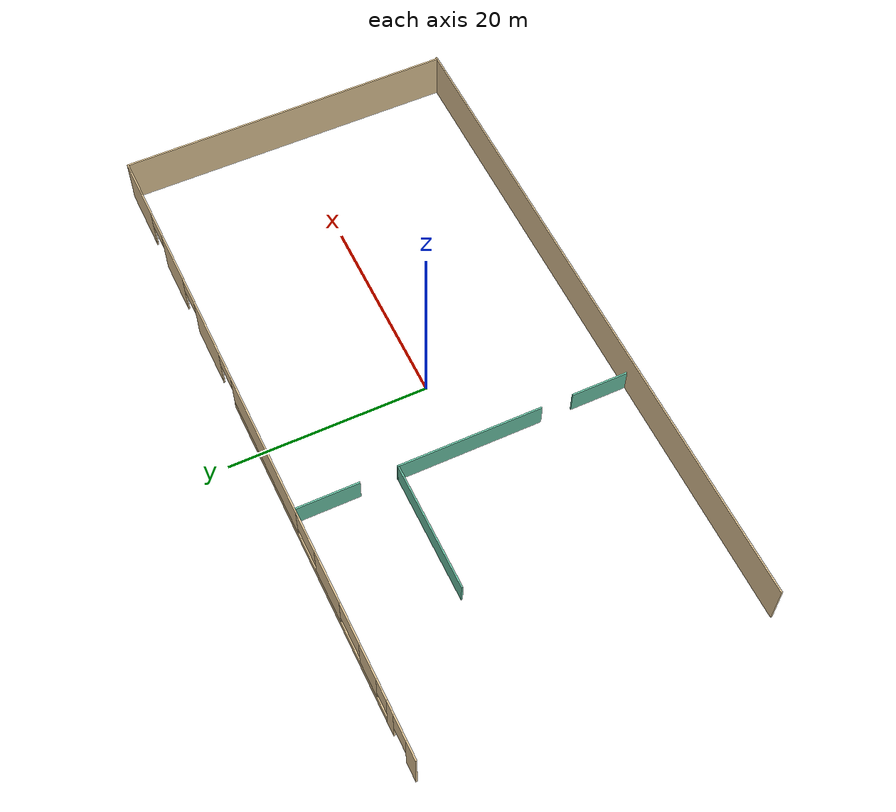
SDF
<sdf version="1.6">
 <model name="myWarehouse">
  <link name="Wall_0">
   <pose>-0.070182 16.8917 0 0 -0 0.003828</pose>
   <visual name="Wall_0_Visual_0">
    <pose>-32.8034 0 2.5 0 -0 0</pose>
    <geometry><box><size>1.86164 0.15 5</size></box></geometry>
    <material>
     <script><uri>file://media/materials/scripts/gazebo.material</uri><name>Gazebo/Grey</name></script>
     <ambient>0.921569 0.807843 0.615686 1</ambient>
     <shader type="pixel"/>
     <diffuse>0.7 0.7 0.7 1</diffuse>
     <specular>0.01 0.01 0.01 1</specular>
     <emissive>0 0 0 1</emissive>
    </material>
    <meta><layer>0</layer></meta>
   </visual>
   <visual name="Wall_0_Visual_1">
    <pose>-28.8213 0 2.5 0 -0 0</pose>
    <geometry><box><size>1.30258 0.15 5</size></box></geometry>
    <material>
     <script><uri>file://media/materials/scripts/gazebo.material</uri><name>Gazebo/Grey</name></script>
     <ambient>0.921569 0.807843 0.615686 1</ambient>
     <shader type="pixel"/>
     <diffuse>0.7 0.7 0.7 1</diffuse>
     <specular>0.01 0.01 0.01 1</specular>
     <emissive>0 0 0 1</emissive>
    </material>
    <meta><layer>0</layer></meta>
   </visual>
   <visual name="Wall_0_Visual_2">
    <pose>12.0192 0 2.5 0 -0 0</pose>
    <geometry><box><size>6.37575 0.15 5</size></box></geometry>
    <material>
     <script><uri>file://media/materials/scripts/gazebo.material</uri><name>Gazebo/Grey</name></script>
     <ambient>0.921569 0.807843 0.615686 1</ambient>
     <shader type="pixel"/>
     <diffuse>0.7 0.7 0.7 1</diffuse>
     <specular>0.01 0.01 0.01 1</specular>
     <emissive>0 0 0 1</emissive>
    </material>
    <meta><layer>0</layer></meta>
   </visual>
   <visual name="Wall_0_Visual_3">
    <pose>21.0664 0 2.5 0 -0 0</pose>
    <geometry><box><size>5.71874 0.15 5</size></box></geometry>
    <material>
     <script><uri>file://media/materials/scripts/gazebo.material</uri><name>Gazebo/Grey</name></script>
     <ambient>0.921569 0.807843 0.615686 1</ambient>
     <shader type="pixel"/>
     <diffuse>0.7 0.7 0.7 1</diffuse>
     <specular>0.01 0.01 0.01 1</specular>
     <emissive>0 0 0 1</emissive>
    </material>
    <meta><layer>0</layer></meta>
   </visual>
   <visual name="Wall_0_Visual_4">
    <pose>30.33 0 2.5 0 -0 0</pose>
    <geometry><box><size>6.80845 0.15 5</size></box></geometry>
    <material>
     <script><uri>file://media/materials/scripts/gazebo.material</uri><name>Gazebo/Grey</name></script>
     <ambient>0.921569 0.807843 0.615686 1</ambient>
     <shader type="pixel"/>
     <diffuse>0.7 0.7 0.7 1</diffuse>
     <specular>0.01 0.01 0.01 1</specular>
     <emissive>0 0 0 1</emissive>
    </material>
    <meta><layer>0</layer></meta>
   </visual>
   <visual name="Wall_0_Visual_5">
    <pose>-11.1694 0 0.5 0 -0 0</pose>
    <geometry><box><size>34.0013 0.15 1</size></box></geometry>
    <material>
     <script><uri>file://media/materials/scripts/gazebo.material</uri><name>Gazebo/Grey</name></script>
     <ambient>0.921569 0.807843 0.615686 1</ambient>
     <shader type="pixel"/>
     <diffuse>0.7 0.7 0.7 1</diffuse>
     <specular>0.01 0.01 0.01 1</specular>
     <emissive>0 0 0 1</emissive>
    </material>
    <meta><layer>0</layer></meta>
   </visual>
   <visual name="Wall_0_Visual_6">
    <pose>-24.4411 0 3 0 -0 0</pose>
    <geometry><box><size>3.45788 0.15 4</size></box></geometry>
    <material>
     <script><uri>file://media/materials/scripts/gazebo.material</uri><name>Gazebo/Grey</name></script>
     <ambient>0.921569 0.807843 0.615686 1</ambient>
     <shader type="pixel"/>
     <diffuse>0.7 0.7 0.7 1</diffuse>
     <specular>0.01 0.01 0.01 1</specular>
     <emissive>0 0 0 1</emissive>
    </material>
    <meta><layer>0</layer></meta>
   </visual>
   <visual name="Wall_0_Visual_7">
    <pose>-16.0599 0 3 0 -0 0</pose>
    <geometry><box><size>5.30456 0.15 4</size></box></geometry>
    <material>
     <script><uri>file://media/materials/scripts/gazebo.material</uri><name>Gazebo/Grey</name></script>
     <ambient>0.921569 0.807843 0.615686 1</ambient>
     <shader type="pixel"/>
     <diffuse>0.7 0.7 0.7 1</diffuse>
     <specular>0.01 0.01 0.01 1</specular>
     <emissive>0 0 0 1</emissive>
    </material>
    <meta><layer>0</layer></meta>
   </visual>
   <visual name="Wall_0_Visual_8">
    <pose>-1.78814 0 3 0 -0 0</pose>
    <geometry><box><size>15.2389 0.15 4</size></box></geometry>
    <material>
     <script><uri>file://media/materials/scripts/gazebo.material</uri><name>Gazebo/Grey</name></script>
     <ambient>0.921569 0.807843 0.615686 1</ambient>
     <shader type="pixel"/>
     <diffuse>0.7 0.7 0.7 1</diffuse>
     <specular>0.01 0.01 0.01 1</specular>
     <emissive>0 0 0 1</emissive>
    </material>
    <meta><layer>0</layer></meta>
   </visual>
   <visual name="Wall_0_Visual_9">
    <pose>-30.6726 0 3.5 0 -0 0</pose>
    <geometry><box><size>2.4 0.15 3</size></box></geometry>
    <material>
     <script><uri>file://media/materials/scripts/gazebo.material</uri><name>Gazebo/Grey</name></script>
     <ambient>0.921569 0.807843 0.615686 1</ambient>
     <shader type="pixel"/>
     <diffuse>0.7 0.7 0.7 1</diffuse>
     <specular>0.01 0.01 0.01 1</specular>
     <emissive>0 0 0 1</emissive>
    </material>
    <meta><layer>0</layer></meta>
   </visual>
   <visual name="Wall_0_Visual_10">
    <pose>-27.17 0 3.5 0 -0 0</pose>
    <geometry><box><size>2 0.15 3</size></box></geometry>
    <material>
     <script><uri>file://media/materials/scripts/gazebo.material</uri><name>Gazebo/Grey</name></script>
     <ambient>0.921569 0.807843 0.615686 1</ambient>
     <shader type="pixel"/>
     <diffuse>0.7 0.7 0.7 1</diffuse>
     <specular>0.01 0.01 0.01 1</specular>
     <emissive>0 0 0 1</emissive>
    </material>
    <meta><layer>0</layer></meta>
   </visual>
   <visual name="Wall_0_Visual_11">
    <pose>-20.7121 0 3.5 0 -0 0</pose>
    <geometry><box><size>4 0.15 3</size></box></geometry>
    <material>
     <script><uri>file://media/materials/scripts/gazebo.material</uri><name>Gazebo/Grey</name></script>
     <ambient>0.921569 0.807843 0.615686 1</ambient>
     <shader type="pixel"/>
     <diffuse>0.7 0.7 0.7 1</diffuse>
     <specular>0.01 0.01 0.01 1</specular>
     <emissive>0 0 0 1</emissive>
    </material>
    <meta><layer>0</layer></meta>
   </visual>
   <visual name="Wall_0_Visual_12">
    <pose>-11.4076 0 3.5 0 -0 0</pose>
    <geometry><box><size>4 0.15 3</size></box></geometry>
    <material>
     <script><uri>file://media/materials/scripts/gazebo.material</uri><name>Gazebo/Grey</name></script>
     <ambient>0.921569 0.807843 0.615686 1</ambient>
     <shader type="pixel"/>
     <diffuse>0.7 0.7 0.7 1</diffuse>
     <specular>0.01 0.01 0.01 1</specular>
     <emissive>0 0 0 1</emissive>
    </material>
    <meta><layer>0</layer></meta>
   </visual>
   <visual name="Wall_0_Visual_13">
    <pose>16.707 0 4 0 -0 0</pose>
    <geometry><box><size>3 0.15 2</size></box></geometry>
    <material>
     <script><uri>file://media/materials/scripts/gazebo.material</uri><name>Gazebo/Grey</name></script>
     <ambient>0.921569 0.807843 0.615686 1</ambient>
     <shader type="pixel"/>
     <diffuse>0.7 0.7 0.7 1</diffuse>
     <specular>0.01 0.01 0.01 1</specular>
     <emissive>0 0 0 1</emissive>
    </material>
    <meta><layer>0</layer></meta>
   </visual>
   <visual name="Wall_0_Visual_14">
    <pose>25.4258 0 4 0 -0 0</pose>
    <geometry><box><size>3 0.15 2</size></box></geometry>
    <material>
     <script><uri>file://media/materials/scripts/gazebo.material</uri><name>Gazebo/Grey</name></script>
     <ambient>0.921569 0.807843 0.615686 1</ambient>
     <shader type="pixel"/>
     <diffuse>0.7 0.7 0.7 1</diffuse>
     <specular>0.01 0.01 0.01 1</specular>
     <emissive>0 0 0 1</emissive>
    </material>
    <meta><layer>0</layer></meta>
   </visual>
   <visual name="Wall_0_Visual_15">
    <pose>7.33129 0 4 0 -0 0</pose>
    <geometry><box><size>3 0.15 2</size></box></geometry>
    <material>
     <script><uri>file://media/materials/scripts/gazebo.material</uri><name>Gazebo/Grey</name></script>
     <ambient>0.921569 0.807843 0.615686 1</ambient>
     <shader type="pixel"/>
     <diffuse>0.7 0.7 0.7 1</diffuse>
     <specular>0.01 0.01 0.01 1</specular>
     <emissive>0 0 0 1</emissive>
    </material>
    <meta><layer>0</layer></meta>
   </visual>
   <collision name="Wall_0_Collision_0">
    <pose>-32.8034 0 2.5 0 -0 0</pose>
    <geometry><box><size>1.86164 0.15 5</size></box></geometry>
    <surface>
     <friction>
      <ode><mu>1</mu><mu2>1</mu2><fdir1>0 0 0</fdir1><slip1>0</slip1><slip2>0</slip2></ode>
      <torsional>
       <coefficient>1</coefficient>
       <patch_radius>0</patch_radius>
       <surface_radius>0</surface_radius>
       <use_patch_radius>1</use_patch_radius>
       <ode><slip>0</slip></ode>
      </torsional>
     </friction>
     <bounce><restitution_coefficient>0</restitution_coefficient><threshold>1e+06</threshold></bounce>
     <contact>
      <collide_without_contact>0</collide_without_contact>
      <collide_without_contact_bitmask>1</collide_without_contact_bitmask>
      <collide_bitmask>1</collide_bitmask>
      <ode>
       <soft_cfm>0</soft_cfm>
       <soft_erp>0.2</soft_erp>
       <kp>1e+13</kp>
       <kd>1</kd>
       <max_vel>0.01</max_vel>
       <min_depth>0</min_depth>
      </ode>
      <bullet>
       <split_impulse>1</split_impulse>
       <split_impulse_penetration_threshold>-0.01</split_impulse_penetration_threshold>
       <soft_cfm>0</soft_cfm>
       <soft_erp>0.2</soft_erp>
       <kp>1e+13</kp>
       <kd>1</kd>
      </bullet>
     </contact>
    </surface>
   </collision>
   <collision name="Wall_0_Collision_1">
    <pose>-28.8213 0 2.5 0 -0 0</pose>
    <geometry><box><size>1.30258 0.15 5</size></box></geometry>
    <surface>
     <friction>
      <ode><mu>1</mu><mu2>1</mu2><fdir1>0 0 0</fdir1><slip1>0</slip1><slip2>0</slip2></ode>
      <torsional>
       <coefficient>1</coefficient>
       <patch_radius>0</patch_radius>
       <surface_radius>0</surface_radius>
       <use_patch_radius>1</use_patch_radius>
       <ode><slip>0</slip></ode>
      </torsional>
     </friction>
     <bounce><restitution_coefficient>0</restitution_coefficient><threshold>1e+06</threshold></bounce>
     <contact>
      <collide_without_contact>0</collide_without_contact>
      <collide_without_contact_bitmask>1</collide_without_contact_bitmask>
      <collide_bitmask>1</collide_bitmask>
      <ode>
       <soft_cfm>0</soft_cfm>
       <soft_erp>0.2</soft_erp>
       <kp>1e+13</kp>
       <kd>1</kd>
       <max_vel>0.01</max_vel>
       <min_depth>0</min_depth>
      </ode>
      <bullet>
       <split_impulse>1</split_impulse>
       <split_impulse_penetration_threshold>-0.01</split_impulse_penetration_threshold>
       <soft_cfm>0</soft_cfm>
       <soft_erp>0.2</soft_erp>
       <kp>1e+13</kp>
       <kd>1</kd>
      </bullet>
     </contact>
    </surface>
   </collision>
   <collision name="Wall_0_Collision_2">
    <pose>12.0192 0 2.5 0 -0 0</pose>
    <geometry><box><size>6.37575 0.15 5</size></box></geometry>
    <surface>
     <friction>
      <ode><mu>1</mu><mu2>1</mu2><fdir1>0 0 0</fdir1><slip1>0</slip1><slip2>0</slip2></ode>
      <torsional>
       <coefficient>1</coefficient>
       <patch_radius>0</patch_radius>
       <surface_radius>0</surface_radius>
       <use_patch_radius>1</use_patch_radius>
       <ode><slip>0</slip></ode>
      </torsional>
     </friction>
     <bounce><restitution_coefficient>0</restitution_coefficient><threshold>1e+06</threshold></bounce>
     <contact>
      <collide_without_contact>0</collide_without_contact>
      <collide_without_contact_bitmask>1</collide_without_contact_bitmask>
      <collide_bitmask>1</collide_bitmask>
      <ode>
       <soft_cfm>0</soft_cfm>
       <soft_erp>0.2</soft_erp>
       <kp>1e+13</kp>
       <kd>1</kd>
       <max_vel>0.01</max_vel>
       <min_depth>0</min_depth>
      </ode>
      <bullet>
       <split_impulse>1</split_impulse>
       <split_impulse_penetration_threshold>-0.01</split_impulse_penetration_threshold>
       <soft_cfm>0</soft_cfm>
       <soft_erp>0.2</soft_erp>
       <kp>1e+13</kp>
       <kd>1</kd>
      </bullet>
     </contact>
    </surface>
   </collision>
   <collision name="Wall_0_Collision_3">
    <pose>21.0664 0 2.5 0 -0 0</pose>
    <geometry><box><size>5.71874 0.15 5</size></box></geometry>
    <surface>
     <friction>
      <ode><mu>1</mu><mu2>1</mu2><fdir1>0 0 0</fdir1><slip1>0</slip1><slip2>0</slip2></ode>
      <torsional>
       <coefficient>1</coefficient>
       <patch_radius>0</patch_radius>
       <surface_radius>0</surface_radius>
       <use_patch_radius>1</use_patch_radius>
       <ode><slip>0</slip></ode>
      </torsional>
     </friction>
     <bounce><restitution_coefficient>0</restitution_coefficient><threshold>1e+06</threshold></bounce>
     <contact>
      <collide_without_contact>0</collide_without_contact>
      <collide_without_contact_bitmask>1</collide_without_contact_bitmask>
      <collide_bitmask>1</collide_bitmask>
      <ode>
       <soft_cfm>0</soft_cfm>
       <soft_erp>0.2</soft_erp>
       <kp>1e+13</kp>
       <kd>1</kd>
       <max_vel>0.01</max_vel>
       <min_depth>0</min_depth>
      </ode>
      <bullet>
       <split_impulse>1</split_impulse>
       <split_impulse_penetration_threshold>-0.01</split_impulse_penetration_threshold>
       <soft_cfm>0</soft_cfm>
       <soft_erp>0.2</soft_erp>
       <kp>1e+13</kp>
       <kd>1</kd>
      </bullet>
     </contact>
    </surface>
   </collision>
   <collision name="Wall_0_Collision_4">
    <pose>30.33 0 2.5 0 -0 0</pose>
    <geometry><box><size>6.80845 0.15 5</size></box></geometry>
    <surface>
     <friction>
      <ode><mu>1</mu><mu2>1</mu2><fdir1>0 0 0</fdir1><slip1>0</slip1><slip2>0</slip2></ode>
      <torsional>
       <coefficient>1</coefficient>
       <patch_radius>0</patch_radius>
       <surface_radius>0</surface_radius>
       <use_patch_radius>1</use_patch_radius>
       <ode><slip>0</slip></ode>
      </torsional>
     </friction>
     <bounce><restitution_coefficient>0</restitution_coefficient><threshold>1e+06</threshold></bounce>
     <contact>
      <collide_without_contact>0</collide_without_contact>
      <collide_without_contact_bitmask>1</collide_without_contact_bitmask>
      <collide_bitmask>1</collide_bitmask>
      <ode>
       <soft_cfm>0</soft_cfm>
       <soft_erp>0.2</soft_erp>
       <kp>1e+13</kp>
       <kd>1</kd>
       <max_vel>0.01</max_vel>
       <min_depth>0</min_depth>
      </ode>
      <bullet>
       <split_impulse>1</split_impulse>
       <split_impulse_penetration_threshold>-0.01</split_impulse_penetration_threshold>
       <soft_cfm>0</soft_cfm>
       <soft_erp>0.2</soft_erp>
       <kp>1e+13</kp>
       <kd>1</kd>
      </bullet>
     </contact>
    </surface>
   </collision>
   <collision name="Wall_0_Collision_5">
    <pose>-11.1694 0 0.5 0 -0 0</pose>
    <geometry><box><size>34.0013 0.15 1</size></box></geometry>
    <surface>
     <friction>
      <ode><mu>1</mu><mu2>1</mu2><fdir1>0 0 0</fdir1><slip1>0</slip1><slip2>0</slip2></ode>
      <torsional>
       <coefficient>1</coefficient>
       <patch_radius>0</patch_radius>
       <surface_radius>0</surface_radius>
       <use_patch_radius>1</use_patch_radius>
       <ode><slip>0</slip></ode>
      </torsional>
     </friction>
     <bounce><restitution_coefficient>0</restitution_coefficient><threshold>1e+06</threshold></bounce>
     <contact>
      <collide_without_contact>0</collide_without_contact>
      <collide_without_contact_bitmask>1</collide_without_contact_bitmask>
      <collide_bitmask>1</collide_bitmask>
      <ode>
       <soft_cfm>0</soft_cfm>
       <soft_erp>0.2</soft_erp>
       <kp>1e+13</kp>
       <kd>1</kd>
       <max_vel>0.01</max_vel>
       <min_depth>0</min_depth>
      </ode>
      <bullet>
       <split_impulse>1</split_impulse>
       <split_impulse_penetration_threshold>-0.01</split_impulse_penetration_threshold>
       <soft_cfm>0</soft_cfm>
       <soft_erp>0.2</soft_erp>
       <kp>1e+13</kp>
       <kd>1</kd>
      </bullet>
     </contact>
    </surface>
   </collision>
   <collision name="Wall_0_Collision_7">
    <pose>-16.0599 0 3 0 -0 0</pose>
    <geometry><box><size>5.30456 0.15 4</size></box></geometry>
    <surface>
     <friction>
      <ode><mu>1</mu><mu2>1</mu2><fdir1>0 0 0</fdir1><slip1>0</slip1><slip2>0</slip2></ode>
      <torsional>
       <coefficient>1</coefficient>
       <patch_radius>0</patch_radius>
       <surface_radius>0</surface_radius>
       <use_patch_radius>1</use_patch_radius>
       <ode><slip>0</slip></ode>
      </torsional>
     </friction>
     <bounce><restitution_coefficient>0</restitution_coefficient><threshold>1e+06</threshold></bounce>
     <contact>
      <collide_without_contact>0</collide_without_contact>
      <collide_without_contact_bitmask>1</collide_without_contact_bitmask>
      <collide_bitmask>1</collide_bitmask>
      <ode>
       <soft_cfm>0</soft_cfm>
       <soft_erp>0.2</soft_erp>
       <kp>1e+13</kp>
       <kd>1</kd>
       <max_vel>0.01</max_vel>
       <min_depth>0</min_depth>
      </ode>
      <bullet>
       <split_impulse>1</split_impulse>
       <split_impulse_penetration_threshold>-0.01</split_impulse_penetration_threshold>
       <soft_cfm>0</soft_cfm>
       <soft_erp>0.2</soft_erp>
       <kp>1e+13</kp>
       <kd>1</kd>
      </bullet>
     </contact>
    </surface>
   </collision>
   <collision name="Wall_0_Collision_6">
    <pose>-24.4411 0 3 0 -0 0</pose>
    <geometry><box><size>3.45788 0.15 4</size></box></geometry>
    <surface>
     <friction>
      <ode><mu>1</mu><mu2>1</mu2><fdir1>0 0 0</fdir1><slip1>0</slip1><slip2>0</slip2></ode>
      <torsional>
       <coefficient>1</coefficient>
       <patch_radius>0</patch_radius>
       <surface_radius>0</surface_radius>
       <use_patch_radius>1</use_patch_radius>
       <ode><slip>0</slip></ode>
      </torsional>
     </friction>
     <bounce><restitution_coefficient>0</restitution_coefficient><threshold>1e+06</threshold></bounce>
     <contact>
      <collide_without_contact>0</collide_without_contact>
      <collide_without_contact_bitmask>1</collide_without_contact_bitmask>
      <collide_bitmask>1</collide_bitmask>
      <ode>
       <soft_cfm>0</soft_cfm>
       <soft_erp>0.2</soft_erp>
       <kp>1e+13</kp>
       <kd>1</kd>
       <max_vel>0.01</max_vel>
       <min_depth>0</min_depth>
      </ode>
      <bullet>
       <split_impulse>1</split_impulse>
       <split_impulse_penetration_threshold>-0.01</split_impulse_penetration_threshold>
       <soft_cfm>0</soft_cfm>
       <soft_erp>0.2</soft_erp>
       <kp>1e+13</kp>
       <kd>1</kd>
      </bullet>
     </contact>
    </surface>
   </collision>
   <collision name="Wall_0_Collision_10">
    <pose>-27.17 0 3.5 0 -0 0</pose>
    <geometry><box><size>2 0.15 3</size></box></geometry>
    <surface>
     <friction>
      <ode><mu>1</mu><mu2>1</mu2><fdir1>0 0 0</fdir1><slip1>0</slip1><slip2>0</slip2></ode>
      <torsional>
       <coefficient>1</coefficient>
       <patch_radius>0</patch_radius>
       <surface_radius>0</surface_radius>
       <use_patch_radius>1</use_patch_radius>
       <ode><slip>0</slip></ode>
      </torsional>
     </friction>
     <bounce><restitution_coefficient>0</restitution_coefficient><threshold>1e+06</threshold></bounce>
     <contact>
      <collide_without_contact>0</collide_without_contact>
      <collide_without_contact_bitmask>1</collide_without_contact_bitmask>
      <collide_bitmask>1</collide_bitmask>
      <ode>
       <soft_cfm>0</soft_cfm>
       <soft_erp>0.2</soft_erp>
       <kp>1e+13</kp>
       <kd>1</kd>
       <max_vel>0.01</max_vel>
       <min_depth>0</min_depth>
      </ode>
      <bullet>
       <split_impulse>1</split_impulse>
       <split_impulse_penetration_threshold>-0.01</split_impulse_penetration_threshold>
       <soft_cfm>0</soft_cfm>
       <soft_erp>0.2</soft_erp>
       <kp>1e+13</kp>
       <kd>1</kd>
      </bullet>
     </contact>
    </surface>
   </collision>
   <collision name="Wall_0_Collision_8">
    <pose>-1.78814 0 3 0 -0 0</pose>
    <geometry><box><size>15.2389 0.15 4</size></box></geometry>
    <surface>
     <friction>
      <ode><mu>1</mu><mu2>1</mu2><fdir1>0 0 0</fdir1><slip1>0</slip1><slip2>0</slip2></ode>
      <torsional>
       <coefficient>1</coefficient>
       <patch_radius>0</patch_radius>
       <surface_radius>0</surface_radius>
       <use_patch_radius>1</use_patch_radius>
       <ode><slip>0</slip></ode>
      </torsional>
     </friction>
     <bounce><restitution_coefficient>0</restitution_coefficient><threshold>1e+06</threshold></bounce>
     <contact>
      <collide_without_contact>0</collide_without_contact>
      <collide_without_contact_bitmask>1</collide_without_contact_bitmask>
      <collide_bitmask>1</collide_bitmask>
      <ode>
       <soft_cfm>0</soft_cfm>
       <soft_erp>0.2</soft_erp>
       <kp>1e+13</kp>
       <kd>1</kd>
       <max_vel>0.01</max_vel>
       <min_depth>0</min_depth>
      </ode>
      <bullet>
       <split_impulse>1</split_impulse>
       <split_impulse_penetration_threshold>-0.01</split_impulse_penetration_threshold>
       <soft_cfm>0</soft_cfm>
       <soft_erp>0.2</soft_erp>
       <kp>1e+13</kp>
       <kd>1</kd>
      </bullet>
     </contact>
    </surface>
   </collision>
   <collision name="Wall_0_Collision_9">
    <pose>-30.6726 0 3.5 0 -0 0</pose>
    <geometry><box><size>2.4 0.15 3</size></box></geometry>
    <surface>
     <friction>
      <ode><mu>1</mu><mu2>1</mu2><fdir1>0 0 0</fdir1><slip1>0</slip1><slip2>0</slip2></ode>
      <torsional>
       <coefficient>1</coefficient>
       <patch_radius>0</patch_radius>
       <surface_radius>0</surface_radius>
       <use_patch_radius>1</use_patch_radius>
       <ode><slip>0</slip></ode>
      </torsional>
     </friction>
     <bounce><restitution_coefficient>0</restitution_coefficient><threshold>1e+06</threshold></bounce>
     <contact>
      <collide_without_contact>0</collide_without_contact>
      <collide_without_contact_bitmask>1</collide_without_contact_bitmask>
      <collide_bitmask>1</collide_bitmask>
      <ode>
       <soft_cfm>0</soft_cfm>
       <soft_erp>0.2</soft_erp>
       <kp>1e+13</kp>
       <kd>1</kd>
       <max_vel>0.01</max_vel>
       <min_depth>0</min_depth>
      </ode>
      <bullet>
       <split_impulse>1</split_impulse>
       <split_impulse_penetration_threshold>-0.01</split_impulse_penetration_threshold>
       <soft_cfm>0</soft_cfm>
       <soft_erp>0.2</soft_erp>
       <kp>1e+13</kp>
       <kd>1</kd>
      </bullet>
     </contact>
    </surface>
   </collision>
   <collision name="Wall_0_Collision_11">
    <pose>-20.7121 0 3.5 0 -0 0</pose>
    <geometry><box><size>4 0.15 3</size></box></geometry>
    <surface>
     <friction>
      <ode><mu>1</mu><mu2>1</mu2><fdir1>0 0 0</fdir1><slip1>0</slip1><slip2>0</slip2></ode>
      <torsional>
       <coefficient>1</coefficient>
       <patch_radius>0</patch_radius>
       <surface_radius>0</surface_radius>
       <use_patch_radius>1</use_patch_radius>
       <ode><slip>0</slip></ode>
      </torsional>
     </friction>
     <bounce><restitution_coefficient>0</restitution_coefficient><threshold>1e+06</threshold></bounce>
     <contact>
      <collide_without_contact>0</collide_without_contact>
      <collide_without_contact_bitmask>1</collide_without_contact_bitmask>
      <collide_bitmask>1</collide_bitmask>
      <ode>
       <soft_cfm>0</soft_cfm>
       <soft_erp>0.2</soft_erp>
       <kp>1e+13</kp>
       <kd>1</kd>
       <max_vel>0.01</max_vel>
       <min_depth>0</min_depth>
      </ode>
      <bullet>
       <split_impulse>1</split_impulse>
       <split_impulse_penetration_threshold>-0.01</split_impulse_penetration_threshold>
       <soft_cfm>0</soft_cfm>
       <soft_erp>0.2</soft_erp>
       <kp>1e+13</kp>
       <kd>1</kd>
      </bullet>
     </contact>
    </surface>
   </collision>
   <collision name="Wall_0_Collision_12">
    <pose>-11.4076 0 3.5 0 -0 0</pose>
    <geometry><box><size>4 0.15 3</size></box></geometry>
    <surface>
     <friction>
      <ode><mu>1</mu><mu2>1</mu2><fdir1>0 0 0</fdir1><slip1>0</slip1><slip2>0</slip2></ode>
      <torsional>
       <coefficient>1</coefficient>
       <patch_radius>0</patch_radius>
       <surface_radius>0</surface_radius>
       <use_patch_radius>1</use_patch_radius>
       <ode><slip>0</slip></ode>
      </torsional>
     </friction>
     <bounce><restitution_coefficient>0</restitution_coefficient><threshold>1e+06</threshold></bounce>
     <contact>
      <collide_without_contact>0</collide_without_contact>
      <collide_without_contact_bitmask>1</collide_without_contact_bitmask>
      <collide_bitmask>1</collide_bitmask>
      <ode>
       <soft_cfm>0</soft_cfm>
       <soft_erp>0.2</soft_erp>
       <kp>1e+13</kp>
       <kd>1</kd>
       <max_vel>0.01</max_vel>
       <min_depth>0</min_depth>
      </ode>
      <bullet>
       <split_impulse>1</split_impulse>
       <split_impulse_penetration_threshold>-0.01</split_impulse_penetration_threshold>
       <soft_cfm>0</soft_cfm>
       <soft_erp>0.2</soft_erp>
       <kp>1e+13</kp>
       <kd>1</kd>
      </bullet>
     </contact>
    </surface>
   </collision>
   <collision name="Wall_0_Collision_13">
    <pose>16.707 0 4 0 -0 0</pose>
    <geometry><box><size>3 0.15 2</size></box></geometry>
    <surface>
     <friction>
      <ode><mu>1</mu><mu2>1</mu2><fdir1>0 0 0</fdir1><slip1>0</slip1><slip2>0</slip2></ode>
      <torsional>
       <coefficient>1</coefficient>
       <patch_radius>0</patch_radius>
       <surface_radius>0</surface_radius>
       <use_patch_radius>1</use_patch_radius>
       <ode><slip>0</slip></ode>
      </torsional>
     </friction>
     <bounce><restitution_coefficient>0</restitution_coefficient><threshold>1e+06</threshold></bounce>
     <contact>
      <collide_without_contact>0</collide_without_contact>
      <collide_without_contact_bitmask>1</collide_without_contact_bitmask>
      <collide_bitmask>1</collide_bitmask>
      <ode>
       <soft_cfm>0</soft_cfm>
       <soft_erp>0.2</soft_erp>
       <kp>1e+13</kp>
       <kd>1</kd>
       <max_vel>0.01</max_vel>
       <min_depth>0</min_depth>
      </ode>
      <bullet>
       <split_impulse>1</split_impulse>
       <split_impulse_penetration_threshold>-0.01</split_impulse_penetration_threshold>
       <soft_cfm>0</soft_cfm>
       <soft_erp>0.2</soft_erp>
       <kp>1e+13</kp>
       <kd>1</kd>
      </bullet>
     </contact>
    </surface>
   </collision>
   <collision name="Wall_0_Collision_14">
    <pose>25.4258 0 4 0 -0 0</pose>
    <geometry><box><size>3 0.15 2</size></box></geometry>
    <surface>
     <friction>
      <ode><mu>1</mu><mu2>1</mu2><fdir1>0 0 0</fdir1><slip1>0</slip1><slip2>0</slip2></ode>
      <torsional>
       <coefficient>1</coefficient>
       <patch_radius>0</patch_radius>
       <surface_radius>0</surface_radius>
       <use_patch_radius>1</use_patch_radius>
       <ode><slip>0</slip></ode>
      </torsional>
     </friction>
     <bounce><restitution_coefficient>0</restitution_coefficient><threshold>1e+06</threshold></bounce>
     <contact>
      <collide_without_contact>0</collide_without_contact>
      <collide_without_contact_bitmask>1</collide_without_contact_bitmask>
      <collide_bitmask>1</collide_bitmask>
      <ode>
       <soft_cfm>0</soft_cfm>
       <soft_erp>0.2</soft_erp>
       <kp>1e+13</kp>
       <kd>1</kd>
       <max_vel>0.01</max_vel>
       <min_depth>0</min_depth>
      </ode>
      <bullet>
       <split_impulse>1</split_impulse>
       <split_impulse_penetration_threshold>-0.01</split_impulse_penetration_threshold>
       <soft_cfm>0</soft_cfm>
       <soft_erp>0.2</soft_erp>
       <kp>1e+13</kp>
       <kd>1</kd>
      </bullet>
     </contact>
    </surface>
   </collision>
   <collision name="Wall_0_Collision_15">
    <pose>7.33129 0 4 0 -0 0</pose>
    <geometry><box><size>3 0.15 2</size></box></geometry>
    <surface>
     <friction>
      <ode><mu>1</mu><mu2>1</mu2><fdir1>0 0 0</fdir1><slip1>0</slip1><slip2>0</slip2></ode>
      <torsional>
       <coefficient>1</coefficient>
       <patch_radius>0</patch_radius>
       <surface_radius>0</surface_radius>
       <use_patch_radius>1</use_patch_radius>
       <ode><slip>0</slip></ode>
      </torsional>
     </friction>
     <bounce><restitution_coefficient>0</restitution_coefficient><threshold>1e+06</threshold></bounce>
     <contact>
      <collide_without_contact>0</collide_without_contact>
      <collide_without_contact_bitmask>1</collide_without_contact_bitmask>
      <collide_bitmask>1</collide_bitmask>
      <ode>
       <soft_cfm>0</soft_cfm>
       <soft_erp>0.2</soft_erp>
       <kp>1e+13</kp>
       <kd>1</kd>
       <max_vel>0.01</max_vel>
       <min_depth>0</min_depth>
      </ode>
      <bullet>
       <split_impulse>1</split_impulse>
       <split_impulse_penetration_threshold>-0.01</split_impulse_penetration_threshold>
       <soft_cfm>0</soft_cfm>
       <soft_erp>0.2</soft_erp>
       <kp>1e+13</kp>
       <kd>1</kd>
      </bullet>
     </contact>
    </surface>
   </collision>
  </link>
  <link name="Wall_1">
   <pose>33.5887 -0.095862 0 0 0 -1.5708</pose>
   <visual name="Wall_1_Visual">
    <pose>0 0 2.5 0 -0 0</pose>
    <geometry><box><size>34 0.15 5</size></box></geometry>
    <material>
     <script><uri>file://media/materials/scripts/gazebo.material</uri><name>Gazebo/Grey</name></script>
     <ambient>0.921569 0.807843 0.615686 1</ambient>
     <shader type="pixel"/>
     <diffuse>0.7 0.7 0.7 1</diffuse>
     <specular>0.01 0.01 0.01 1</specular>
     <emissive>0 0 0 1</emissive>
    </material>
    <meta><layer>0</layer></meta>
   </visual>
   <collision name="Wall_1_Collision">
    <pose>0 0 2.5 0 -0 0</pose>
    <geometry><box><size>34 0.15 5</size></box></geometry>
    <surface>
     <friction>
      <ode><mu>1</mu><mu2>1</mu2><fdir1>0 0 0</fdir1><slip1>0</slip1><slip2>0</slip2></ode>
      <torsional>
       <coefficient>1</coefficient>
       <patch_radius>0</patch_radius>
       <surface_radius>0</surface_radius>
       <use_patch_radius>1</use_patch_radius>
       <ode><slip>0</slip></ode>
      </torsional>
     </friction>
     <bounce><restitution_coefficient>0</restitution_coefficient><threshold>1e+06</threshold></bounce>
     <contact>
      <collide_without_contact>0</collide_without_contact>
      <collide_without_contact_bitmask>1</collide_without_contact_bitmask>
      <collide_bitmask>1</collide_bitmask>
      <ode>
       <soft_cfm>0</soft_cfm>
       <soft_erp>0.2</soft_erp>
       <kp>1e+13</kp>
       <kd>1</kd>
       <max_vel>0.01</max_vel>
       <min_depth>0</min_depth>
      </ode>
      <bullet>
       <split_impulse>1</split_impulse>
       <split_impulse_penetration_threshold>-0.01</split_impulse_penetration_threshold>
       <soft_cfm>0</soft_cfm>
       <soft_erp>0.2</soft_erp>
       <kp>1e+13</kp>
       <kd>1</kd>
      </bullet>
     </contact>
    </surface>
   </collision>
  </link>
  <link name="Wall_28">
   <pose>-7.78619 13.4404 0 0 0 -1.5708</pose>
   <visual name="Wall_28_Visual">
    <pose>0 0 1.25 0 -0 0</pose>
    <geometry><box><size>6.5 0.15 2.5</size></box></geometry>
    <material>
     <script><uri>file://media/materials/scripts/gazebo.material</uri><name>Gazebo/Grey</name></script>
     <ambient>0.435294 0.796078 0.67451 1</ambient>
     <shader type="pixel"/>
     <diffuse>0.7 0.7 0.7 1</diffuse>
     <specular>0.01 0.01 0.01 1</specular>
     <emissive>0 0 0 1</emissive>
    </material>
    <meta><layer>0</layer></meta>
   </visual>
   <collision name="Wall_28_Collision">
    <pose>0 0 1.25 0 -0 0</pose>
    <geometry><box><size>6.5 0.15 2.5</size></box></geometry>
    <surface>
     <friction>
      <ode><mu>1</mu><mu2>1</mu2><fdir1>0 0 0</fdir1><slip1>0</slip1><slip2>0</slip2></ode>
      <torsional>
       <coefficient>1</coefficient>
       <patch_radius>0</patch_radius>
       <surface_radius>0</surface_radius>
       <use_patch_radius>1</use_patch_radius>
       <ode><slip>0</slip></ode>
      </torsional>
     </friction>
     <bounce><restitution_coefficient>0</restitution_coefficient><threshold>1e+06</threshold></bounce>
     <contact>
      <collide_without_contact>0</collide_without_contact>
      <collide_without_contact_bitmask>1</collide_without_contact_bitmask>
      <collide_bitmask>1</collide_bitmask>
      <ode>
       <soft_cfm>0</soft_cfm>
       <soft_erp>0.2</soft_erp>
       <kp>1e+13</kp>
       <kd>1</kd>
       <max_vel>0.01</max_vel>
       <min_depth>0</min_depth>
      </ode>
      <bullet>
       <split_impulse>1</split_impulse>
       <split_impulse_penetration_threshold>-0.01</split_impulse_penetration_threshold>
       <soft_cfm>0</soft_cfm>
       <soft_erp>0.2</soft_erp>
       <kp>1e+13</kp>
       <kd>1</kd>
      </bullet>
     </contact>
    </surface>
   </collision>
  </link>
  <link name="Wall_42">
   <pose>-14.2568 6.42206 0 0 -0 0</pose>
   <visual name="Wall_42_Visual">
    <pose>0 0 1.25 0 -0 0</pose>
    <geometry><box><size>13.25 0.15 2.5</size></box></geometry>
    <material>
     <script><uri>file://media/materials/scripts/gazebo.material</uri><name>Gazebo/Grey</name></script>
     <ambient>0.435294 0.796078 0.67451 1</ambient>
     <shader type="pixel"/>
     <diffuse>0.7 0.7 0.7 1</diffuse>
     <specular>0.01 0.01 0.01 1</specular>
     <emissive>0 0 0 1</emissive>
    </material>
    <meta><layer>0</layer></meta>
   </visual>
   <collision name="Wall_42_Collision">
    <pose>0 0 1.25 0 -0 0</pose>
    <geometry><box><size>13.25 0.15 2.5</size></box></geometry>
    <surface>
     <friction>
      <ode><mu>1</mu><mu2>1</mu2><fdir1>0 0 0</fdir1><slip1>0</slip1><slip2>0</slip2></ode>
      <torsional>
       <coefficient>1</coefficient>
       <patch_radius>0</patch_radius>
       <surface_radius>0</surface_radius>
       <use_patch_radius>1</use_patch_radius>
       <ode><slip>0</slip></ode>
      </torsional>
     </friction>
     <bounce><restitution_coefficient>0</restitution_coefficient><threshold>1e+06</threshold></bounce>
     <contact>
      <collide_without_contact>0</collide_without_contact>
      <collide_without_contact_bitmask>1</collide_without_contact_bitmask>
      <collide_bitmask>1</collide_bitmask>
      <ode>
       <soft_cfm>0</soft_cfm>
       <soft_erp>0.2</soft_erp>
       <kp>1e+13</kp>
       <kd>1</kd>
       <max_vel>0.01</max_vel>
       <min_depth>0</min_depth>
      </ode>
      <bullet>
       <split_impulse>1</split_impulse>
       <split_impulse_penetration_threshold>-0.01</split_impulse_penetration_threshold>
       <soft_cfm>0</soft_cfm>
       <soft_erp>0.2</soft_erp>
       <kp>1e+13</kp>
       <kd>1</kd>
      </bullet>
     </contact>
    </surface>
   </collision>
  </link>
  <link name="Wall_43">
   <pose>-7.70682 -0.775578 0 0 0 -1.5708</pose>
   <visual name="Wall_43_Visual">
    <pose>0 0 1.25 0 -0 0</pose>
    <geometry><box><size>14.5994 0.15 2.5</size></box></geometry>
    <material>
     <script><uri>file://media/materials/scripts/gazebo.material</uri><name>Gazebo/Grey</name></script>
     <ambient>0.435294 0.796078 0.67451 1</ambient>
     <shader type="pixel"/>
     <diffuse>0.7 0.7 0.7 1</diffuse>
     <specular>0.01 0.01 0.01 1</specular>
     <emissive>0 0 0 1</emissive>
    </material>
    <meta><layer>0</layer></meta>
   </visual>
   <collision name="Wall_43_Collision">
    <pose>0 0 1.25 0 -0 0</pose>
    <geometry><box><size>14.5994 0.15 2.5</size></box></geometry>
    <surface>
     <friction>
      <ode><mu>1</mu><mu2>1</mu2><fdir1>0 0 0</fdir1><slip1>0</slip1><slip2>0</slip2></ode>
      <torsional>
       <coefficient>1</coefficient>
       <patch_radius>0</patch_radius>
       <surface_radius>0</surface_radius>
       <use_patch_radius>1</use_patch_radius>
       <ode><slip>0</slip></ode>
      </torsional>
     </friction>
     <bounce><restitution_coefficient>0</restitution_coefficient><threshold>1e+06</threshold></bounce>
     <contact>
      <collide_without_contact>0</collide_without_contact>
      <collide_without_contact_bitmask>1</collide_without_contact_bitmask>
      <collide_bitmask>1</collide_bitmask>
      <ode>
       <soft_cfm>0</soft_cfm>
       <soft_erp>0.2</soft_erp>
       <kp>1e+13</kp>
       <kd>1</kd>
       <max_vel>0.01</max_vel>
       <min_depth>0</min_depth>
      </ode>
      <bullet>
       <split_impulse>1</split_impulse>
       <split_impulse_penetration_threshold>-0.01</split_impulse_penetration_threshold>
       <soft_cfm>0</soft_cfm>
       <soft_erp>0.2</soft_erp>
       <kp>1e+13</kp>
       <kd>1</kd>
      </bullet>
     </contact>
    </surface>
   </collision>
  </link>
  <link name="Wall_50">
   <pose>-7.7073 -14.0902 0 0 0 -1.5708</pose>
   <visual name="Wall_50_Visual">
    <pose>0 0 1.25 0 -0 0</pose>
    <geometry><box><size>5.75 0.15 2.5</size></box></geometry>
    <material>
     <script><uri>file://media/materials/scripts/gazebo.material</uri><name>Gazebo/Grey</name></script>
     <ambient>0.435294 0.796078 0.67451 1</ambient>
     <shader type="pixel"/>
     <diffuse>0.7 0.7 0.7 1</diffuse>
     <specular>0.01 0.01 0.01 1</specular>
     <emissive>0 0 0 1</emissive>
    </material>
    <meta><layer>0</layer></meta>
   </visual>
   <collision name="Wall_50_Collision">
    <pose>0 0 1.25 0 -0 0</pose>
    <geometry><box><size>5.75 0.15 2.5</size></box></geometry>
    <surface>
     <friction>
      <ode><mu>1</mu><mu2>1</mu2><fdir1>0 0 0</fdir1><slip1>0</slip1><slip2>0</slip2></ode>
      <torsional>
       <coefficient>1</coefficient>
       <patch_radius>0</patch_radius>
       <surface_radius>0</surface_radius>
       <use_patch_radius>1</use_patch_radius>
       <ode><slip>0</slip></ode>
      </torsional>
     </friction>
     <bounce><restitution_coefficient>0</restitution_coefficient><threshold>1e+06</threshold></bounce>
     <contact>
      <collide_without_contact>0</collide_without_contact>
      <collide_without_contact_bitmask>1</collide_without_contact_bitmask>
      <collide_bitmask>1</collide_bitmask>
      <ode>
       <soft_cfm>0</soft_cfm>
       <soft_erp>0.2</soft_erp>
       <kp>1e+13</kp>
       <kd>1</kd>
       <max_vel>0.01</max_vel>
       <min_depth>0</min_depth>
      </ode>
      <bullet>
       <split_impulse>1</split_impulse>
       <split_impulse_penetration_threshold>-0.01</split_impulse_penetration_threshold>
       <soft_cfm>0</soft_cfm>
       <soft_erp>0.2</soft_erp>
       <kp>1e+13</kp>
       <kd>1</kd>
      </bullet>
     </contact>
    </surface>
   </collision>
  </link>
  <link name="Wall_58">
   <pose>0.054451 -17.0003 0 0 -0 0</pose>
   <visual name="Wall_58_Visual">
    <pose>0 0 2.5 0 -0 0</pose>
    <geometry><box><size>67.5 0.15 5</size></box></geometry>
    <material>
     <script><uri>file://media/materials/scripts/gazebo.material</uri><name>Gazebo/Grey</name></script>
     <ambient>0.921569 0.807843 0.615686 1</ambient>
     <shader type="pixel"/>
     <diffuse>0.7 0.7 0.7 1</diffuse>
     <specular>0.01 0.01 0.01 1</specular>
     <emissive>0 0 0 1</emissive>
    </material>
    <meta><layer>0</layer></meta>
   </visual>
   <collision name="Wall_58_Collision">
    <pose>0 0 2.5 0 -0 0</pose>
    <geometry><box><size>67.5 0.15 5</size></box></geometry>
    <surface>
     <friction>
      <ode><mu>1</mu><mu2>1</mu2><fdir1>0 0 0</fdir1><slip1>0</slip1><slip2>0</slip2></ode>
      <torsional>
       <coefficient>1</coefficient>
       <patch_radius>0</patch_radius>
       <surface_radius>0</surface_radius>
       <use_patch_radius>1</use_patch_radius>
       <ode><slip>0</slip></ode>
      </torsional>
     </friction>
     <bounce><restitution_coefficient>0</restitution_coefficient><threshold>1e+06</threshold></bounce>
     <contact>
      <collide_without_contact>0</collide_without_contact>
      <collide_without_contact_bitmask>1</collide_without_contact_bitmask>
      <collide_bitmask>1</collide_bitmask>
      <ode>
       <soft_cfm>0</soft_cfm>
       <soft_erp>0.2</soft_erp>
       <kp>1e+13</kp>
       <kd>1</kd>
       <max_vel>0.01</max_vel>
       <min_depth>0</min_depth>
      </ode>
      <bullet>
       <split_impulse>1</split_impulse>
       <split_impulse_penetration_threshold>-0.01</split_impulse_penetration_threshold>
       <soft_cfm>0</soft_cfm>
       <soft_erp>0.2</soft_erp>
       <kp>1e+13</kp>
       <kd>1</kd>
      </bullet>
     </contact>
    </surface>
   </collision>
  </link>
  <static>1</static>
 </model>
</sdf>
